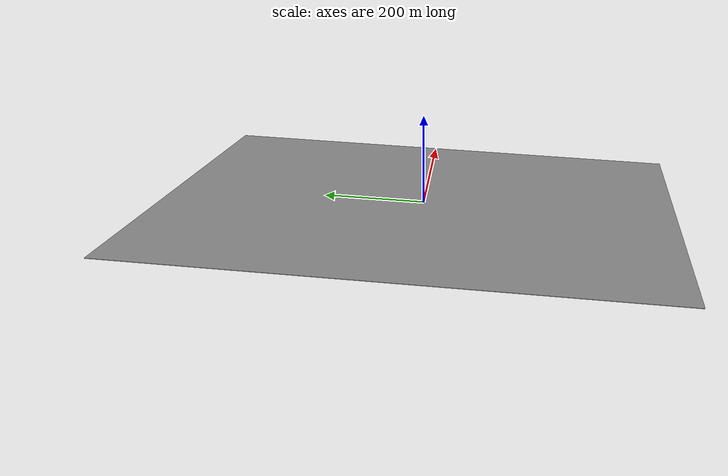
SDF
<?xml version="1.0" ?>
<sdf version="1.5">
  <model name="ground_plane_20degreesslope">
    <static>true</static>
    <link name="link">
      <collision name="collision">
        <geometry>
          <plane>
            <normal>0.34 0 0.93</normal>
            <size>1000 1000</size>
          </plane>
        </geometry>
        <surface>
          <friction>
            <ode>
              <mu>100</mu>
              <mu2>50</mu2>
            </ode>
          </friction>
        </surface>
      </collision>
      <visual name="visual">
        <cast_shadows>false</cast_shadows>
        <geometry>
          <plane>
            <normal>0.34 0 0.93</normal>
            <size>1000 1000</size>
          </plane>
        </geometry>
        <material>
          <script>
            <uri>file://media/materials/scripts/gazebo.material</uri>
            <name>Gazebo/Grey</name>
          </script>
        </material>
      </visual>
    </link>
  </model>
</sdf>
